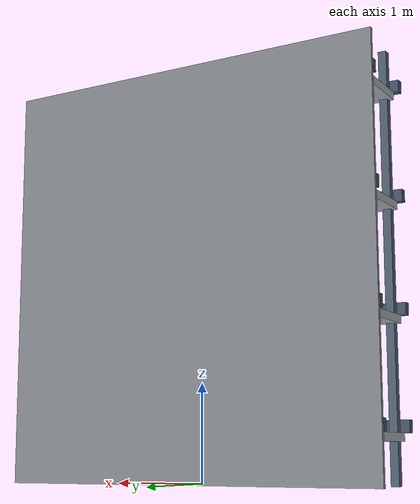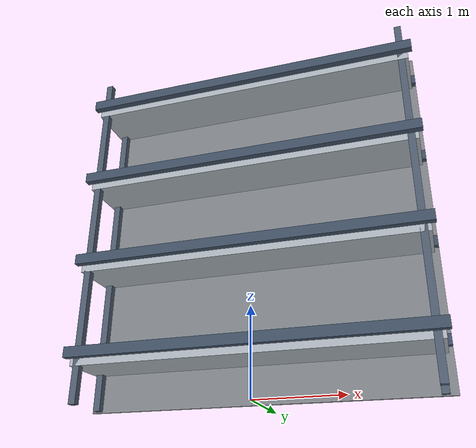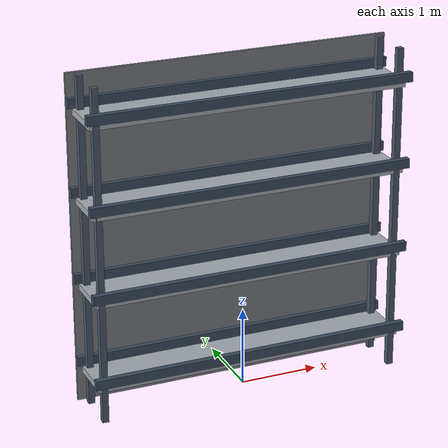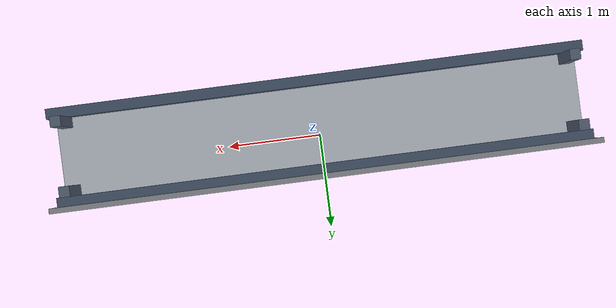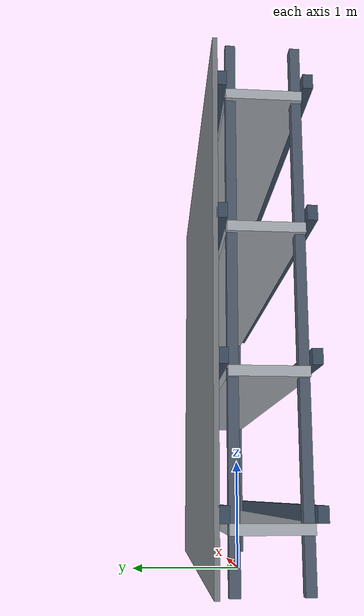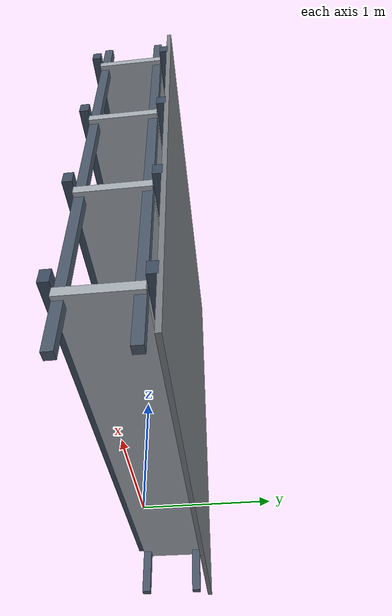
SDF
<?xml version="1.0" encoding="UTF-8"?>
<sdf version="1.9">
  <model name="warehouse_shelf">
    <static>true</static>
    <link name="rack">

      <!-- Vertical posts -->
      <collision name="post_fl_col"><pose>1.92 0.26 2.10 0 0 0</pose><geometry><box><size>0.08 0.08 4.20</size></box></geometry></collision>
      <collision name="post_fr_col"><pose>1.92 -0.26 2.10 0 0 0</pose><geometry><box><size>0.08 0.08 4.20</size></box></geometry></collision>
      <collision name="post_bl_col"><pose>-1.92 0.26 2.10 0 0 0</pose><geometry><box><size>0.08 0.08 4.20</size></box></geometry></collision>
      <collision name="post_br_col"><pose>-1.92 -0.26 2.10 0 0 0</pose><geometry><box><size>0.08 0.08 4.20</size></box></geometry></collision>

      <visual name="post_fl"><pose>1.92 0.26 2.10 0 0 0</pose><geometry><box><size>0.08 0.08 4.20</size></box></geometry><material><ambient>0.23 0.27 0.33 1</ambient><diffuse>0.30 0.35 0.42 1</diffuse></material></visual>
      <visual name="post_fr"><pose>1.92 -0.26 2.10 0 0 0</pose><geometry><box><size>0.08 0.08 4.20</size></box></geometry><material><ambient>0.23 0.27 0.33 1</ambient><diffuse>0.30 0.35 0.42 1</diffuse></material></visual>
      <visual name="post_bl"><pose>-1.92 0.26 2.10 0 0 0</pose><geometry><box><size>0.08 0.08 4.20</size></box></geometry><material><ambient>0.23 0.27 0.33 1</ambient><diffuse>0.30 0.35 0.42 1</diffuse></material></visual>
      <visual name="post_br"><pose>-1.92 -0.26 2.10 0 0 0</pose><geometry><box><size>0.08 0.08 4.20</size></box></geometry><material><ambient>0.23 0.27 0.33 1</ambient><diffuse>0.30 0.35 0.42 1</diffuse></material></visual>

      <!-- Opaque divider panel on one long side: blocks line-of-sight through the rack. -->
      <collision name="divider_panel_col"><pose>0 0.39 2.10 0 0 0</pose><geometry><box><size>4.10 0.04 4.20</size></box></geometry></collision>
      <visual name="divider_panel"><pose>0 0.39 2.10 0 0 0</pose><geometry><box><size>4.10 0.04 4.20</size></box></geometry><material><ambient>0.36 0.38 0.40 1</ambient><diffuse>0.48 0.50 0.52 1</diffuse></material></visual>

      <!-- Shelf boards -->
      <collision name="deck_0_col"><pose>0 0 0.45 0 0 0</pose><geometry><box><size>4.00 0.60 0.08</size></box></geometry></collision>
      <collision name="deck_1_col"><pose>0 0 1.55 0 0 0</pose><geometry><box><size>4.00 0.60 0.08</size></box></geometry></collision>
      <collision name="deck_2_col"><pose>0 0 2.65 0 0 0</pose><geometry><box><size>4.00 0.60 0.08</size></box></geometry></collision>
      <collision name="deck_3_col"><pose>0 0 3.75 0 0 0</pose><geometry><box><size>4.00 0.60 0.08</size></box></geometry></collision>

      <visual name="deck_0"><pose>0 0 0.45 0 0 0</pose><geometry><box><size>4.00 0.60 0.08</size></box></geometry><material><ambient>0.54 0.57 0.60 1</ambient><diffuse>0.66 0.69 0.72 1</diffuse></material></visual>
      <visual name="deck_1"><pose>0 0 1.55 0 0 0</pose><geometry><box><size>4.00 0.60 0.08</size></box></geometry><material><ambient>0.54 0.57 0.60 1</ambient><diffuse>0.66 0.69 0.72 1</diffuse></material></visual>
      <visual name="deck_2"><pose>0 0 2.65 0 0 0</pose><geometry><box><size>4.00 0.60 0.08</size></box></geometry><material><ambient>0.54 0.57 0.60 1</ambient><diffuse>0.66 0.69 0.72 1</diffuse></material></visual>
      <visual name="deck_3"><pose>0 0 3.75 0 0 0</pose><geometry><box><size>4.00 0.60 0.08</size></box></geometry><material><ambient>0.54 0.57 0.60 1</ambient><diffuse>0.66 0.69 0.72 1</diffuse></material></visual>

      <!-- Front/back longitudinal beams on each shelf level -->
      <collision name="beam_f0_col"><pose>0 0.34 0.55 0 0 0</pose><geometry><box><size>4.10 0.08 0.12</size></box></geometry></collision>
      <collision name="beam_b0_col"><pose>0 -0.34 0.55 0 0 0</pose><geometry><box><size>4.10 0.08 0.12</size></box></geometry></collision>
      <collision name="beam_f1_col"><pose>0 0.34 1.65 0 0 0</pose><geometry><box><size>4.10 0.08 0.12</size></box></geometry></collision>
      <collision name="beam_b1_col"><pose>0 -0.34 1.65 0 0 0</pose><geometry><box><size>4.10 0.08 0.12</size></box></geometry></collision>
      <collision name="beam_f2_col"><pose>0 0.34 2.75 0 0 0</pose><geometry><box><size>4.10 0.08 0.12</size></box></geometry></collision>
      <collision name="beam_b2_col"><pose>0 -0.34 2.75 0 0 0</pose><geometry><box><size>4.10 0.08 0.12</size></box></geometry></collision>
      <collision name="beam_f3_col"><pose>0 0.34 3.85 0 0 0</pose><geometry><box><size>4.10 0.08 0.12</size></box></geometry></collision>
      <collision name="beam_b3_col"><pose>0 -0.34 3.85 0 0 0</pose><geometry><box><size>4.10 0.08 0.12</size></box></geometry></collision>

      <visual name="beam_f0"><pose>0 0.34 0.55 0 0 0</pose><geometry><box><size>4.10 0.08 0.12</size></box></geometry><material><ambient>0.18 0.23 0.30 1</ambient><diffuse>0.24 0.30 0.38 1</diffuse></material></visual>
      <visual name="beam_b0"><pose>0 -0.34 0.55 0 0 0</pose><geometry><box><size>4.10 0.08 0.12</size></box></geometry><material><ambient>0.18 0.23 0.30 1</ambient><diffuse>0.24 0.30 0.38 1</diffuse></material></visual>
      <visual name="beam_f1"><pose>0 0.34 1.65 0 0 0</pose><geometry><box><size>4.10 0.08 0.12</size></box></geometry><material><ambient>0.18 0.23 0.30 1</ambient><diffuse>0.24 0.30 0.38 1</diffuse></material></visual>
      <visual name="beam_b1"><pose>0 -0.34 1.65 0 0 0</pose><geometry><box><size>4.10 0.08 0.12</size></box></geometry><material><ambient>0.18 0.23 0.30 1</ambient><diffuse>0.24 0.30 0.38 1</diffuse></material></visual>
      <visual name="beam_f2"><pose>0 0.34 2.75 0 0 0</pose><geometry><box><size>4.10 0.08 0.12</size></box></geometry><material><ambient>0.18 0.23 0.30 1</ambient><diffuse>0.24 0.30 0.38 1</diffuse></material></visual>
      <visual name="beam_b2"><pose>0 -0.34 2.75 0 0 0</pose><geometry><box><size>4.10 0.08 0.12</size></box></geometry><material><ambient>0.18 0.23 0.30 1</ambient><diffuse>0.24 0.30 0.38 1</diffuse></material></visual>
      <visual name="beam_f3"><pose>0 0.34 3.85 0 0 0</pose><geometry><box><size>4.10 0.08 0.12</size></box></geometry><material><ambient>0.18 0.23 0.30 1</ambient><diffuse>0.24 0.30 0.38 1</diffuse></material></visual>
      <visual name="beam_b3"><pose>0 -0.34 3.85 0 0 0</pose><geometry><box><size>4.10 0.08 0.12</size></box></geometry><material><ambient>0.18 0.23 0.30 1</ambient><diffuse>0.24 0.30 0.38 1</diffuse></material></visual>
    </link>
  </model>
</sdf>
